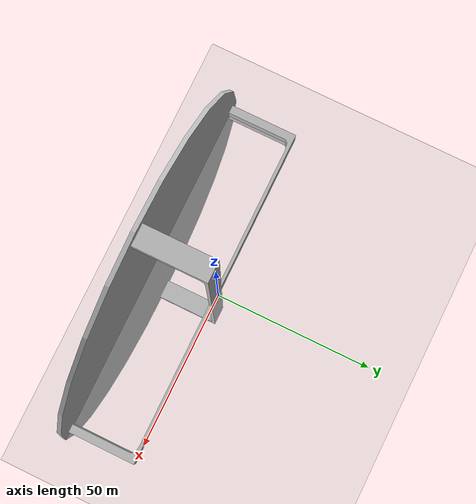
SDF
<?xml version="1.0"?>
<sdf version="1.4">
  <world name="default">
    <include>
      <uri>model://ground_plane</uri>
    </include>
    <include>
      <uri>model://sun</uri>
    </include>

    <include>
      <uri>model://coffeetable</uri>
      <name>table</name>
	    <pose>0.88 0 0  1.5708 0 0</pose>
    </include>

<include>
      <uri>model://apple</uri>
      <name>apple</name>
	  <pose>1.82 0.182 0.65 0 0 0</pose>
    </include>
   <include>
      <uri>model://potted_meat</uri>
      <name>spam1</name>
	  <pose>2.145 0.832 0.65 0 0 1.5708</pose>
    </include>
    <include>
      <uri>model://potted_meat</uri>
      <name>spam2</name>
	  <pose>2.21 -0.494 0.65 0 0 1.5708</pose>
    </include>

    <include>
      <uri>model://tomatosoup</uri>
      <name>tomato1</name>
	  <pose>1.82 -0.598 2 1.5708 0 1.5708</pose>
    </include>

  </world>
</sdf>

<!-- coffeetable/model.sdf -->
<sdf version="1.4">
  <model name="coffeetable">
    <static>true</static>
    <link name="body">
      <inertial>
        <mass>20</mass>
        <inertia> <!-- inertias are tricky to compute -->
          <!-- http://gazebosim.org/tutorials?tut=inertia&cat=build_robot -->
          <ixx>1</ixx>       <!-- for a box: ixx = 0.083 * mass * (y*y + z*z) -->
          <ixy>000000</ixy>         <!-- for a box: ixy = 0 -->
          <ixz>0.000000</ixz>         <!-- for a box: ixz = 0 -->
          <iyy>1</iyy>       <!-- for a box: iyy = 0.083 * mass * (x*x + z*z) -->
          <iyz>0.000000</iyz>         <!-- for a box: iyz = 0 -->
          <izz>1</izz>       <!-- for a box: izz = 0.083 * mass * (x*x + y*y) -->
        </inertia>
      </inertial>
      <collision name="collision">
        <geometry>
          <mesh>
			     <uri>model://coffeetable/meshes/coffeetable.obj</uri>
			     <scale>1.3 1.3 0.5</scale>
          </mesh>
        </geometry>
      </collision>
      <visual name="visual">
        <geometry>
          <mesh>
			     <uri>model://coffeetable/meshes/coffeetable.obj</uri>
			     <scale>1.3 1.3 0.5</scale>
          </mesh>
        </geometry>
      </visual>
    </link>
  </model>
</sdf>

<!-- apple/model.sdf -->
<sdf version="1.4">
  <model name="apple">
    <pose>0 0 0  1.5708 0 0</pose>
    <static>0</static>
    <link name="body">
      <inertial>
          <mass>0.068</mass>
          <inertia>
            <ixx>0.000064</ixx>
            <ixy>0.000000</ixy>
            <ixz>0.000000</ixz>
            <iyy>0.000064</iyy>
            <iyz>0.000000</iyz>
            <izz>0.000064</izz>
          </inertia>
      </inertial>
      <collision name="collision">
        <geometry>
          <mesh>
			<uri>model://apple/meshes/apple.obj</uri>
			<scale>0.15 0.15 0.15</scale>
          </mesh>
        </geometry>
        <surface>
            <friction>
              <ode>
                <mu>30.0</mu>
                <mu2>30.0</mu2>
              </ode>
            </friction>
            <contact>
              <ode>
                <kp>1000000.0</kp>
                <kd>100.0</kd>
                <max_vel>1.0</max_vel>
                <min_depth>0.002</min_depth>
              </ode>
            </contact>
        </surface>
      </collision>
      <visual name="visual">
        <geometry>
          <mesh>
			<uri>model://apple/meshes/apple.obj</uri>
			<scale>0.15 0.15 0.15</scale>
          </mesh>
        </geometry>
      </visual>
      <velocity_decay>
        <linear>0.000000</linear>
        <angular>0.000000</angular>
      </velocity_decay>
      <self_collide>0</self_collide>
      <kinematic>0</kinematic>
      <gravity>1</gravity>
    </link>
  </model>
</sdf>

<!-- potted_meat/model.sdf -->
<sdf version="1.4">
  <model name="potted_meat">
    <pose>0 0 0  0 0 0</pose>
    <static>0</static>
    <link name="body">
      <inertial>
          <mass>0.37</mass>
          <inertia>
            <ixx>0.000497</ixx>
            <ixy>0.000000</ixy>
            <ixz>0.000000</ixz>
            <iyy>0.000284</iyy>
            <iyz>0.000000</iyz>
            <izz>0.000367</izz>
          </inertia>
      </inertial>
      <collision name="collision">
        <geometry>
          <mesh>
			  <uri>model://potted_meat/meshes/potted.obj</uri>
			  <scale>0.1 0.1 0.1</scale>
          </mesh>
        </geometry>
        <surface>
            <friction>
              <ode>
                <mu>80.0</mu>
                <mu2>100.0</mu2>
              </ode>
            </friction>
            <contact>
              <ode>
                <kp>1000000.0</kp>
                <kd>100.0</kd>
                <max_vel>1.0</max_vel>
                <min_depth>0.002</min_depth>
              </ode>
            </contact>
        </surface>
      </collision>
      <visual name="visual">
        <geometry>
          <mesh>
			  <uri>model://potted_meat/meshes/potted.obj</uri>
			  <scale>0.1 0.1 0.1</scale>
          </mesh>
        </geometry>
      </visual>
      <velocity_decay>
        <linear>0.000000</linear>
        <angular>0.000000</angular>
      </velocity_decay>
      <self_collide>0</self_collide>
      <kinematic>0</kinematic>
      <gravity>1</gravity>
    </link>
  </model>
</sdf>

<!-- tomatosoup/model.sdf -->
<sdf version="1.4">
  <model name="tomato_soup">
    <pose>0 0 0  0 0 1.57</pose>
    <static>0</static>
    <link name="body">
      <inertial>
          <mass>0.349</mass>
          <inertia>
            <ixx>0.000423</ixx>
            <ixy>0.000000</ixy>
            <ixz>0.000000</ixz>
            <iyy>0.000423</iyy>
            <iyz>0.000000</iyz>
            <izz>0.000253</izz>
          </inertia>
      </inertial>
      <collision name="collision">
        <geometry>
          <mesh>
			  <uri>model://tomatosoup/meshes/tomato.obj</uri>
			  <scale>0.1 0.1 0.1</scale>
          </mesh>
        </geometry>
        <surface>
            <friction>
              <ode>
                <mu>80.0</mu>
                <mu2>100.0</mu2>
              </ode>
            </friction>
            <contact>
              <ode>
                <kp>1000000.0</kp>
                <kd>100.0</kd>
                <max_vel>1.0</max_vel>
                <min_depth>0.002</min_depth>
              </ode>
            </contact>
        </surface>
      </collision>
      <visual name="visual">
        <geometry>
          <mesh>
			  <uri>model://tomatosoup/meshes/tomato.obj</uri>
			  <scale>0.1 0.1 0.1</scale>
          </mesh>
        </geometry>
      </visual>
      <velocity_decay>
        <linear>0.000000</linear>
        <angular>0.000000</angular>
      </velocity_decay>
      <self_collide>0</self_collide>
      <kinematic>0</kinematic>
      <gravity>1</gravity>
    </link>
  </model>
</sdf>
